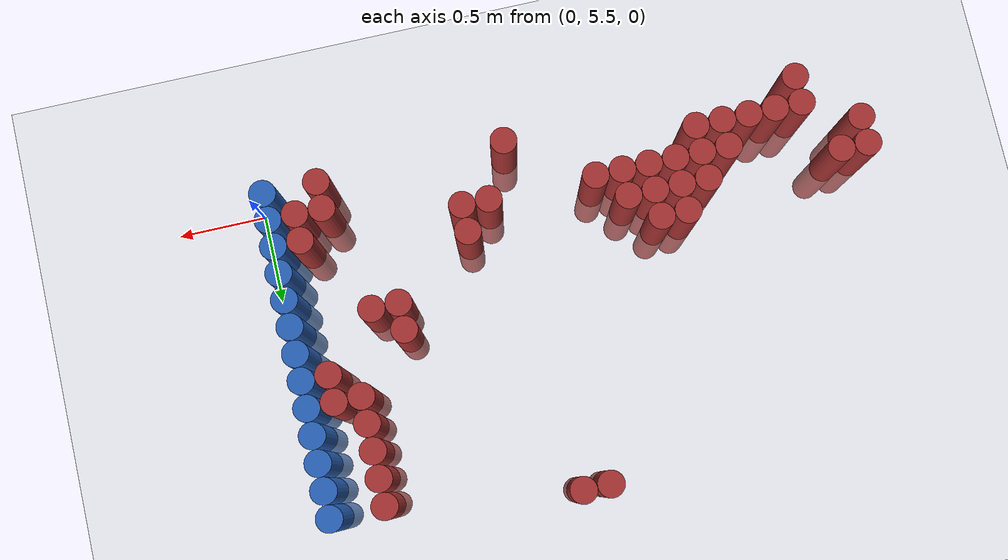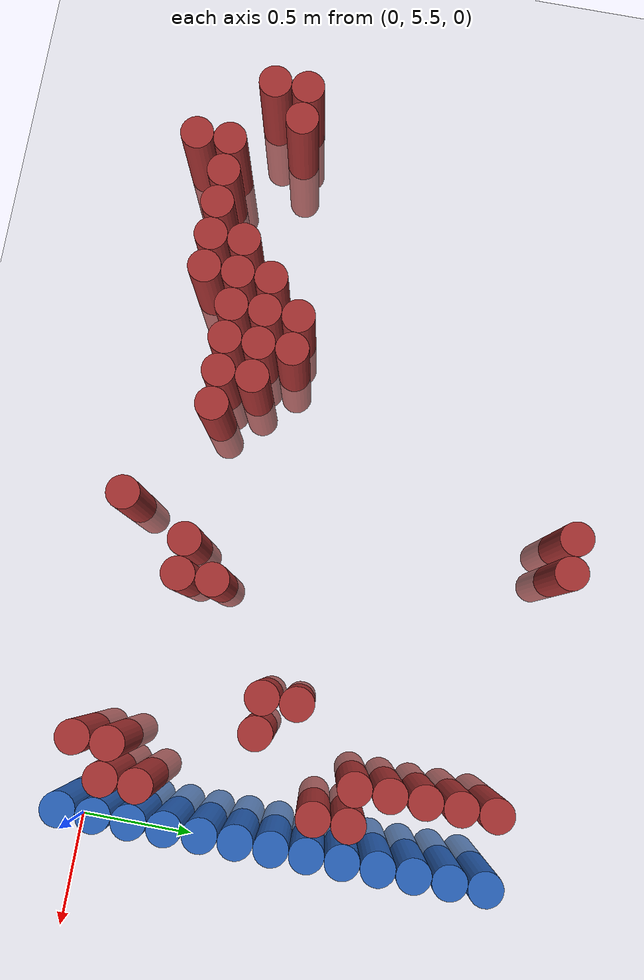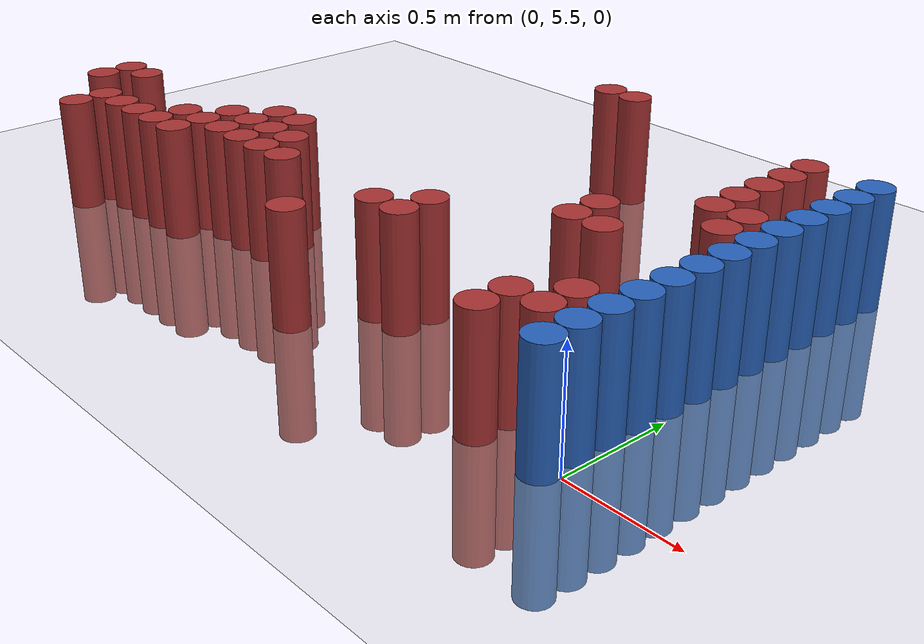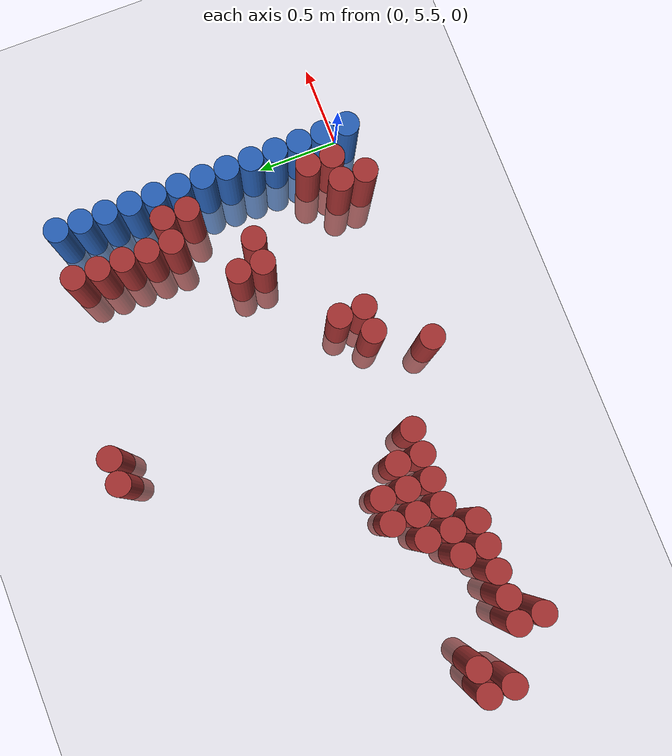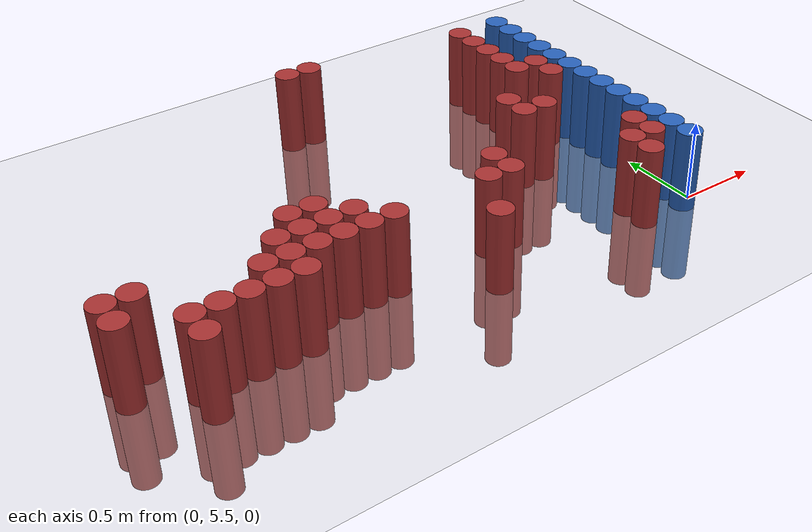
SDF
<sdf version="1.6">
 <world name="world_241">
  <model name="ground_plane">
   <static>1</static>
   <link name="link">
    <collision name="collision">
     <geometry><plane><normal>0 0 1</normal><size>100 100</size></plane></geometry>
     <surface><friction><ode><mu>100</mu><mu2>50</mu2></ode></friction></surface>
    </collision>
    <visual name="visual">
     <cast_shadows>0</cast_shadows>
     <geometry><plane><normal>0 0 1</normal><size>100 100</size></plane></geometry>
     <material>
      <script><uri>file://media/materials/scripts/gazebo.material</uri><name>Gazebo/Grey</name></script>
     </material>
    </visual>
   </link>
  </model>
  <model name="unit_cylinder_158">
   <static>1</static>
   <pose>-3.375000 5.775000 0.000000 0.000000 0.000000 0.000000</pose>
   <link name="link">
    <inertial>
     <mass>1</mass>
     <inertia><ixx>0.145833</ixx><ixy>0</ixy><ixz>0</ixz><iyy>0.145833</iyy><iyz>0</iyz><izz>0.125</izz></inertia>
    </inertial>
    <collision name="collision">
     <geometry><cylinder><radius>0.075000</radius><length>1</length></cylinder></geometry>
    </collision>
    <visual name="visual">
     <geometry><cylinder><radius>0.075000</radius><length>1</length></cylinder></geometry>
     <material>
      <ambient>0.648000 0.192000 0.192000 1</ambient>
      <diffuse>0.648000 0.192000 0.192000 1</diffuse>
     </material>
     <material>
      <script><name>Gazebo/Grey</name><uri>file://media/materials/scripts/gazebo.material</uri></script>
     </material>
    </visual>
   </link>
  </model>
  <model name="unit_cylinder_159">
   <static>1</static>
   <pose>-3.375000 5.925000 0.000000 0.000000 0.000000 0.000000</pose>
   <link name="link">
    <inertial>
     <mass>1</mass>
     <inertia><ixx>0.145833</ixx><ixy>0</ixy><ixz>0</ixz><iyy>0.145833</iyy><iyz>0</iyz><izz>0.125</izz></inertia>
    </inertial>
    <collision name="collision">
     <geometry><cylinder><radius>0.075000</radius><length>1</length></cylinder></geometry>
    </collision>
    <visual name="visual">
     <geometry><cylinder><radius>0.075000</radius><length>1</length></cylinder></geometry>
     <material>
      <ambient>0.648000 0.192000 0.192000 1</ambient>
      <diffuse>0.648000 0.192000 0.192000 1</diffuse>
     </material>
     <material>
      <script><name>Gazebo/Grey</name><uri>file://media/materials/scripts/gazebo.material</uri></script>
     </material>
    </visual>
   </link>
  </model>
  <model name="unit_cylinder_160">
   <static>1</static>
   <pose>-3.225000 5.925000 0.000000 0.000000 0.000000 0.000000</pose>
   <link name="link">
    <inertial>
     <mass>1</mass>
     <inertia><ixx>0.145833</ixx><ixy>0</ixy><ixz>0</ixz><iyy>0.145833</iyy><iyz>0</iyz><izz>0.125</izz></inertia>
    </inertial>
    <collision name="collision">
     <geometry><cylinder><radius>0.075000</radius><length>1</length></cylinder></geometry>
    </collision>
    <visual name="visual">
     <geometry><cylinder><radius>0.075000</radius><length>1</length></cylinder></geometry>
     <material>
      <ambient>0.648000 0.192000 0.192000 1</ambient>
      <diffuse>0.648000 0.192000 0.192000 1</diffuse>
     </material>
     <material>
      <script><name>Gazebo/Grey</name><uri>file://media/materials/scripts/gazebo.material</uri></script>
     </material>
    </visual>
   </link>
  </model>
  <model name="unit_cylinder_161">
   <static>1</static>
   <pose>-3.075000 5.475000 0.000000 0.000000 0.000000 0.000000</pose>
   <link name="link">
    <inertial>
     <mass>1</mass>
     <inertia><ixx>0.145833</ixx><ixy>0</ixy><ixz>0</ixz><iyy>0.145833</iyy><iyz>0</iyz><izz>0.125</izz></inertia>
    </inertial>
    <collision name="collision">
     <geometry><cylinder><radius>0.075000</radius><length>1</length></cylinder></geometry>
    </collision>
    <visual name="visual">
     <geometry><cylinder><radius>0.075000</radius><length>1</length></cylinder></geometry>
     <material>
      <ambient>0.648000 0.192000 0.192000 1</ambient>
      <diffuse>0.648000 0.192000 0.192000 1</diffuse>
     </material>
     <material>
      <script><name>Gazebo/Grey</name><uri>file://media/materials/scripts/gazebo.material</uri></script>
     </material>
    </visual>
   </link>
  </model>
  <model name="unit_cylinder_162">
   <static>1</static>
   <pose>-3.075000 5.625000 0.000000 0.000000 0.000000 0.000000</pose>
   <link name="link">
    <inertial>
     <mass>1</mass>
     <inertia><ixx>0.145833</ixx><ixy>0</ixy><ixz>0</ixz><iyy>0.145833</iyy><iyz>0</iyz><izz>0.125</izz></inertia>
    </inertial>
    <collision name="collision">
     <geometry><cylinder><radius>0.075000</radius><length>1</length></cylinder></geometry>
    </collision>
    <visual name="visual">
     <geometry><cylinder><radius>0.075000</radius><length>1</length></cylinder></geometry>
     <material>
      <ambient>0.648000 0.192000 0.192000 1</ambient>
      <diffuse>0.648000 0.192000 0.192000 1</diffuse>
     </material>
     <material>
      <script><name>Gazebo/Grey</name><uri>file://media/materials/scripts/gazebo.material</uri></script>
     </material>
    </visual>
   </link>
  </model>
  <model name="unit_cylinder_163">
   <static>1</static>
   <pose>-2.925000 5.625000 0.000000 0.000000 0.000000 0.000000</pose>
   <link name="link">
    <inertial>
     <mass>1</mass>
     <inertia><ixx>0.145833</ixx><ixy>0</ixy><ixz>0</ixz><iyy>0.145833</iyy><iyz>0</iyz><izz>0.125</izz></inertia>
    </inertial>
    <collision name="collision">
     <geometry><cylinder><radius>0.075000</radius><length>1</length></cylinder></geometry>
    </collision>
    <visual name="visual">
     <geometry><cylinder><radius>0.075000</radius><length>1</length></cylinder></geometry>
     <material>
      <ambient>0.648000 0.192000 0.192000 1</ambient>
      <diffuse>0.648000 0.192000 0.192000 1</diffuse>
     </material>
     <material>
      <script><name>Gazebo/Grey</name><uri>file://media/materials/scripts/gazebo.material</uri></script>
     </material>
    </visual>
   </link>
  </model>
  <model name="unit_cylinder_164">
   <static>1</static>
   <pose>-2.775000 5.625000 0.000000 0.000000 0.000000 0.000000</pose>
   <link name="link">
    <inertial>
     <mass>1</mass>
     <inertia><ixx>0.145833</ixx><ixy>0</ixy><ixz>0</ixz><iyy>0.145833</iyy><iyz>0</iyz><izz>0.125</izz></inertia>
    </inertial>
    <collision name="collision">
     <geometry><cylinder><radius>0.075000</radius><length>1</length></cylinder></geometry>
    </collision>
    <visual name="visual">
     <geometry><cylinder><radius>0.075000</radius><length>1</length></cylinder></geometry>
     <material>
      <ambient>0.648000 0.192000 0.192000 1</ambient>
      <diffuse>0.648000 0.192000 0.192000 1</diffuse>
     </material>
     <material>
      <script><name>Gazebo/Grey</name><uri>file://media/materials/scripts/gazebo.material</uri></script>
     </material>
    </visual>
   </link>
  </model>
  <model name="unit_cylinder_165">
   <static>1</static>
   <pose>-2.625000 5.625000 0.000000 0.000000 0.000000 0.000000</pose>
   <link name="link">
    <inertial>
     <mass>1</mass>
     <inertia><ixx>0.145833</ixx><ixy>0</ixy><ixz>0</ixz><iyy>0.145833</iyy><iyz>0</iyz><izz>0.125</izz></inertia>
    </inertial>
    <collision name="collision">
     <geometry><cylinder><radius>0.075000</radius><length>1</length></cylinder></geometry>
    </collision>
    <visual name="visual">
     <geometry><cylinder><radius>0.075000</radius><length>1</length></cylinder></geometry>
     <material>
      <ambient>0.648000 0.192000 0.192000 1</ambient>
      <diffuse>0.648000 0.192000 0.192000 1</diffuse>
     </material>
     <material>
      <script><name>Gazebo/Grey</name><uri>file://media/materials/scripts/gazebo.material</uri></script>
     </material>
    </visual>
   </link>
  </model>
  <model name="unit_cylinder_166">
   <static>1</static>
   <pose>-2.625000 5.775000 0.000000 0.000000 0.000000 0.000000</pose>
   <link name="link">
    <inertial>
     <mass>1</mass>
     <inertia><ixx>0.145833</ixx><ixy>0</ixy><ixz>0</ixz><iyy>0.145833</iyy><iyz>0</iyz><izz>0.125</izz></inertia>
    </inertial>
    <collision name="collision">
     <geometry><cylinder><radius>0.075000</radius><length>1</length></cylinder></geometry>
    </collision>
    <visual name="visual">
     <geometry><cylinder><radius>0.075000</radius><length>1</length></cylinder></geometry>
     <material>
      <ambient>0.648000 0.192000 0.192000 1</ambient>
      <diffuse>0.648000 0.192000 0.192000 1</diffuse>
     </material>
     <material>
      <script><name>Gazebo/Grey</name><uri>file://media/materials/scripts/gazebo.material</uri></script>
     </material>
    </visual>
   </link>
  </model>
  <model name="unit_cylinder_167">
   <static>1</static>
   <pose>-2.475000 5.625000 0.000000 0.000000 0.000000 0.000000</pose>
   <link name="link">
    <inertial>
     <mass>1</mass>
     <inertia><ixx>0.145833</ixx><ixy>0</ixy><ixz>0</ixz><iyy>0.145833</iyy><iyz>0</iyz><izz>0.125</izz></inertia>
    </inertial>
    <collision name="collision">
     <geometry><cylinder><radius>0.075000</radius><length>1</length></cylinder></geometry>
    </collision>
    <visual name="visual">
     <geometry><cylinder><radius>0.075000</radius><length>1</length></cylinder></geometry>
     <material>
      <ambient>0.648000 0.192000 0.192000 1</ambient>
      <diffuse>0.648000 0.192000 0.192000 1</diffuse>
     </material>
     <material>
      <script><name>Gazebo/Grey</name><uri>file://media/materials/scripts/gazebo.material</uri></script>
     </material>
    </visual>
   </link>
  </model>
  <model name="unit_cylinder_168">
   <static>1</static>
   <pose>-2.475000 5.775000 0.000000 0.000000 0.000000 0.000000</pose>
   <link name="link">
    <inertial>
     <mass>1</mass>
     <inertia><ixx>0.145833</ixx><ixy>0</ixy><ixz>0</ixz><iyy>0.145833</iyy><iyz>0</iyz><izz>0.125</izz></inertia>
    </inertial>
    <collision name="collision">
     <geometry><cylinder><radius>0.075000</radius><length>1</length></cylinder></geometry>
    </collision>
    <visual name="visual">
     <geometry><cylinder><radius>0.075000</radius><length>1</length></cylinder></geometry>
     <material>
      <ambient>0.648000 0.192000 0.192000 1</ambient>
      <diffuse>0.648000 0.192000 0.192000 1</diffuse>
     </material>
     <material>
      <script><name>Gazebo/Grey</name><uri>file://media/materials/scripts/gazebo.material</uri></script>
     </material>
    </visual>
   </link>
  </model>
  <model name="unit_cylinder_169">
   <static>1</static>
   <pose>-2.475000 5.925000 0.000000 0.000000 0.000000 0.000000</pose>
   <link name="link">
    <inertial>
     <mass>1</mass>
     <inertia><ixx>0.145833</ixx><ixy>0</ixy><ixz>0</ixz><iyy>0.145833</iyy><iyz>0</iyz><izz>0.125</izz></inertia>
    </inertial>
    <collision name="collision">
     <geometry><cylinder><radius>0.075000</radius><length>1</length></cylinder></geometry>
    </collision>
    <visual name="visual">
     <geometry><cylinder><radius>0.075000</radius><length>1</length></cylinder></geometry>
     <material>
      <ambient>0.648000 0.192000 0.192000 1</ambient>
      <diffuse>0.648000 0.192000 0.192000 1</diffuse>
     </material>
     <material>
      <script><name>Gazebo/Grey</name><uri>file://media/materials/scripts/gazebo.material</uri></script>
     </material>
    </visual>
   </link>
  </model>
  <model name="unit_cylinder_172">
   <static>1</static>
   <pose>-2.325000 5.775000 0.000000 0.000000 0.000000 0.000000</pose>
   <link name="link">
    <inertial>
     <mass>1</mass>
     <inertia><ixx>0.145833</ixx><ixy>0</ixy><ixz>0</ixz><iyy>0.145833</iyy><iyz>0</iyz><izz>0.125</izz></inertia>
    </inertial>
    <collision name="collision">
     <geometry><cylinder><radius>0.075000</radius><length>1</length></cylinder></geometry>
    </collision>
    <visual name="visual">
     <geometry><cylinder><radius>0.075000</radius><length>1</length></cylinder></geometry>
     <material>
      <ambient>0.648000 0.192000 0.192000 1</ambient>
      <diffuse>0.648000 0.192000 0.192000 1</diffuse>
     </material>
     <material>
      <script><name>Gazebo/Grey</name><uri>file://media/materials/scripts/gazebo.material</uri></script>
     </material>
    </visual>
   </link>
  </model>
  <model name="unit_cylinder_173">
   <static>1</static>
   <pose>-2.325000 5.925000 0.000000 0.000000 0.000000 0.000000</pose>
   <link name="link">
    <inertial>
     <mass>1</mass>
     <inertia><ixx>0.145833</ixx><ixy>0</ixy><ixz>0</ixz><iyy>0.145833</iyy><iyz>0</iyz><izz>0.125</izz></inertia>
    </inertial>
    <collision name="collision">
     <geometry><cylinder><radius>0.075000</radius><length>1</length></cylinder></geometry>
    </collision>
    <visual name="visual">
     <geometry><cylinder><radius>0.075000</radius><length>1</length></cylinder></geometry>
     <material>
      <ambient>0.648000 0.192000 0.192000 1</ambient>
      <diffuse>0.648000 0.192000 0.192000 1</diffuse>
     </material>
     <material>
      <script><name>Gazebo/Grey</name><uri>file://media/materials/scripts/gazebo.material</uri></script>
     </material>
    </visual>
   </link>
  </model>
  <model name="unit_cylinder_174">
   <static>1</static>
   <pose>-2.325000 6.075000 0.000000 0.000000 0.000000 0.000000</pose>
   <link name="link">
    <inertial>
     <mass>1</mass>
     <inertia><ixx>0.145833</ixx><ixy>0</ixy><ixz>0</ixz><iyy>0.145833</iyy><iyz>0</iyz><izz>0.125</izz></inertia>
    </inertial>
    <collision name="collision">
     <geometry><cylinder><radius>0.075000</radius><length>1</length></cylinder></geometry>
    </collision>
    <visual name="visual">
     <geometry><cylinder><radius>0.075000</radius><length>1</length></cylinder></geometry>
     <material>
      <ambient>0.648000 0.192000 0.192000 1</ambient>
      <diffuse>0.648000 0.192000 0.192000 1</diffuse>
     </material>
     <material>
      <script><name>Gazebo/Grey</name><uri>file://media/materials/scripts/gazebo.material</uri></script>
     </material>
    </visual>
   </link>
  </model>
  <model name="unit_cylinder_176">
   <static>1</static>
   <pose>-2.175000 5.775000 0.000000 0.000000 0.000000 0.000000</pose>
   <link name="link">
    <inertial>
     <mass>1</mass>
     <inertia><ixx>0.145833</ixx><ixy>0</ixy><ixz>0</ixz><iyy>0.145833</iyy><iyz>0</iyz><izz>0.125</izz></inertia>
    </inertial>
    <collision name="collision">
     <geometry><cylinder><radius>0.075000</radius><length>1</length></cylinder></geometry>
    </collision>
    <visual name="visual">
     <geometry><cylinder><radius>0.075000</radius><length>1</length></cylinder></geometry>
     <material>
      <ambient>0.648000 0.192000 0.192000 1</ambient>
      <diffuse>0.648000 0.192000 0.192000 1</diffuse>
     </material>
     <material>
      <script><name>Gazebo/Grey</name><uri>file://media/materials/scripts/gazebo.material</uri></script>
     </material>
    </visual>
   </link>
  </model>
  <model name="unit_cylinder_177">
   <static>1</static>
   <pose>-2.175000 5.925000 0.000000 0.000000 0.000000 0.000000</pose>
   <link name="link">
    <inertial>
     <mass>1</mass>
     <inertia><ixx>0.145833</ixx><ixy>0</ixy><ixz>0</ixz><iyy>0.145833</iyy><iyz>0</iyz><izz>0.125</izz></inertia>
    </inertial>
    <collision name="collision">
     <geometry><cylinder><radius>0.075000</radius><length>1</length></cylinder></geometry>
    </collision>
    <visual name="visual">
     <geometry><cylinder><radius>0.075000</radius><length>1</length></cylinder></geometry>
     <material>
      <ambient>0.648000 0.192000 0.192000 1</ambient>
      <diffuse>0.648000 0.192000 0.192000 1</diffuse>
     </material>
     <material>
      <script><name>Gazebo/Grey</name><uri>file://media/materials/scripts/gazebo.material</uri></script>
     </material>
    </visual>
   </link>
  </model>
  <model name="unit_cylinder_178">
   <static>1</static>
   <pose>-2.175000 6.075000 0.000000 0.000000 0.000000 0.000000</pose>
   <link name="link">
    <inertial>
     <mass>1</mass>
     <inertia><ixx>0.145833</ixx><ixy>0</ixy><ixz>0</ixz><iyy>0.145833</iyy><iyz>0</iyz><izz>0.125</izz></inertia>
    </inertial>
    <collision name="collision">
     <geometry><cylinder><radius>0.075000</radius><length>1</length></cylinder></geometry>
    </collision>
    <visual name="visual">
     <geometry><cylinder><radius>0.075000</radius><length>1</length></cylinder></geometry>
     <material>
      <ambient>0.648000 0.192000 0.192000 1</ambient>
      <diffuse>0.648000 0.192000 0.192000 1</diffuse>
     </material>
     <material>
      <script><name>Gazebo/Grey</name><uri>file://media/materials/scripts/gazebo.material</uri></script>
     </material>
    </visual>
   </link>
  </model>
  <model name="unit_cylinder_179">
   <static>1</static>
   <pose>-2.025000 5.775000 0.000000 0.000000 0.000000 0.000000</pose>
   <link name="link">
    <inertial>
     <mass>1</mass>
     <inertia><ixx>0.145833</ixx><ixy>0</ixy><ixz>0</ixz><iyy>0.145833</iyy><iyz>0</iyz><izz>0.125</izz></inertia>
    </inertial>
    <collision name="collision">
     <geometry><cylinder><radius>0.075000</radius><length>1</length></cylinder></geometry>
    </collision>
    <visual name="visual">
     <geometry><cylinder><radius>0.075000</radius><length>1</length></cylinder></geometry>
     <material>
      <ambient>0.648000 0.192000 0.192000 1</ambient>
      <diffuse>0.648000 0.192000 0.192000 1</diffuse>
     </material>
     <material>
      <script><name>Gazebo/Grey</name><uri>file://media/materials/scripts/gazebo.material</uri></script>
     </material>
    </visual>
   </link>
  </model>
  <model name="unit_cylinder_180">
   <static>1</static>
   <pose>-2.025000 5.925000 0.000000 0.000000 0.000000 0.000000</pose>
   <link name="link">
    <inertial>
     <mass>1</mass>
     <inertia><ixx>0.145833</ixx><ixy>0</ixy><ixz>0</ixz><iyy>0.145833</iyy><iyz>0</iyz><izz>0.125</izz></inertia>
    </inertial>
    <collision name="collision">
     <geometry><cylinder><radius>0.075000</radius><length>1</length></cylinder></geometry>
    </collision>
    <visual name="visual">
     <geometry><cylinder><radius>0.075000</radius><length>1</length></cylinder></geometry>
     <material>
      <ambient>0.648000 0.192000 0.192000 1</ambient>
      <diffuse>0.648000 0.192000 0.192000 1</diffuse>
     </material>
     <material>
      <script><name>Gazebo/Grey</name><uri>file://media/materials/scripts/gazebo.material</uri></script>
     </material>
    </visual>
   </link>
  </model>
  <model name="unit_cylinder_181">
   <static>1</static>
   <pose>-1.875000 5.775000 0.000000 0.000000 0.000000 0.000000</pose>
   <link name="link">
    <inertial>
     <mass>1</mass>
     <inertia><ixx>0.145833</ixx><ixy>0</ixy><ixz>0</ixz><iyy>0.145833</iyy><iyz>0</iyz><izz>0.125</izz></inertia>
    </inertial>
    <collision name="collision">
     <geometry><cylinder><radius>0.075000</radius><length>1</length></cylinder></geometry>
    </collision>
    <visual name="visual">
     <geometry><cylinder><radius>0.075000</radius><length>1</length></cylinder></geometry>
     <material>
      <ambient>0.648000 0.192000 0.192000 1</ambient>
      <diffuse>0.648000 0.192000 0.192000 1</diffuse>
     </material>
     <material>
      <script><name>Gazebo/Grey</name><uri>file://media/materials/scripts/gazebo.material</uri></script>
     </material>
    </visual>
   </link>
  </model>
  <model name="unit_cylinder_188">
   <static>1</static>
   <pose>-1.575000 7.425000 0.000000 0.000000 0.000000 0.000000</pose>
   <link name="link">
    <inertial>
     <mass>1</mass>
     <inertia><ixx>0.145833</ixx><ixy>0</ixy><ixz>0</ixz><iyy>0.145833</iyy><iyz>0</iyz><izz>0.125</izz></inertia>
    </inertial>
    <collision name="collision">
     <geometry><cylinder><radius>0.075000</radius><length>1</length></cylinder></geometry>
    </collision>
    <visual name="visual">
     <geometry><cylinder><radius>0.075000</radius><length>1</length></cylinder></geometry>
     <material>
      <ambient>0.648000 0.192000 0.192000 1</ambient>
      <diffuse>0.648000 0.192000 0.192000 1</diffuse>
     </material>
     <material>
      <script><name>Gazebo/Grey</name><uri>file://media/materials/scripts/gazebo.material</uri></script>
     </material>
    </visual>
   </link>
  </model>
  <model name="unit_cylinder_191">
   <static>1</static>
   <pose>-1.425000 5.475000 0.000000 0.000000 0.000000 0.000000</pose>
   <link name="link">
    <inertial>
     <mass>1</mass>
     <inertia><ixx>0.145833</ixx><ixy>0</ixy><ixz>0</ixz><iyy>0.145833</iyy><iyz>0</iyz><izz>0.125</izz></inertia>
    </inertial>
    <collision name="collision">
     <geometry><cylinder><radius>0.075000</radius><length>1</length></cylinder></geometry>
    </collision>
    <visual name="visual">
     <geometry><cylinder><radius>0.075000</radius><length>1</length></cylinder></geometry>
     <material>
      <ambient>0.648000 0.192000 0.192000 1</ambient>
      <diffuse>0.648000 0.192000 0.192000 1</diffuse>
     </material>
     <material>
      <script><name>Gazebo/Grey</name><uri>file://media/materials/scripts/gazebo.material</uri></script>
     </material>
    </visual>
   </link>
  </model>
  <model name="unit_cylinder_192">
   <static>1</static>
   <pose>-1.425000 7.425000 0.000000 0.000000 0.000000 0.000000</pose>
   <link name="link">
    <inertial>
     <mass>1</mass>
     <inertia><ixx>0.145833</ixx><ixy>0</ixy><ixz>0</ixz><iyy>0.145833</iyy><iyz>0</iyz><izz>0.125</izz></inertia>
    </inertial>
    <collision name="collision">
     <geometry><cylinder><radius>0.075000</radius><length>1</length></cylinder></geometry>
    </collision>
    <visual name="visual">
     <geometry><cylinder><radius>0.075000</radius><length>1</length></cylinder></geometry>
     <material>
      <ambient>0.648000 0.192000 0.192000 1</ambient>
      <diffuse>0.648000 0.192000 0.192000 1</diffuse>
     </material>
     <material>
      <script><name>Gazebo/Grey</name><uri>file://media/materials/scripts/gazebo.material</uri></script>
     </material>
    </visual>
   </link>
  </model>
  <model name="unit_cylinder_195">
   <static>1</static>
   <pose>-1.275000 5.775000 0.000000 0.000000 0.000000 0.000000</pose>
   <link name="link">
    <inertial>
     <mass>1</mass>
     <inertia><ixx>0.145833</ixx><ixy>0</ixy><ixz>0</ixz><iyy>0.145833</iyy><iyz>0</iyz><izz>0.125</izz></inertia>
    </inertial>
    <collision name="collision">
     <geometry><cylinder><radius>0.075000</radius><length>1</length></cylinder></geometry>
    </collision>
    <visual name="visual">
     <geometry><cylinder><radius>0.075000</radius><length>1</length></cylinder></geometry>
     <material>
      <ambient>0.648000 0.192000 0.192000 1</ambient>
      <diffuse>0.648000 0.192000 0.192000 1</diffuse>
     </material>
     <material>
      <script><name>Gazebo/Grey</name><uri>file://media/materials/scripts/gazebo.material</uri></script>
     </material>
    </visual>
   </link>
  </model>
  <model name="unit_cylinder_196">
   <static>1</static>
   <pose>-1.125000 5.775000 0.000000 0.000000 0.000000 0.000000</pose>
   <link name="link">
    <inertial>
     <mass>1</mass>
     <inertia><ixx>0.145833</ixx><ixy>0</ixy><ixz>0</ixz><iyy>0.145833</iyy><iyz>0</iyz><izz>0.125</izz></inertia>
    </inertial>
    <collision name="collision">
     <geometry><cylinder><radius>0.075000</radius><length>1</length></cylinder></geometry>
    </collision>
    <visual name="visual">
     <geometry><cylinder><radius>0.075000</radius><length>1</length></cylinder></geometry>
     <material>
      <ambient>0.648000 0.192000 0.192000 1</ambient>
      <diffuse>0.648000 0.192000 0.192000 1</diffuse>
     </material>
     <material>
      <script><name>Gazebo/Grey</name><uri>file://media/materials/scripts/gazebo.material</uri></script>
     </material>
    </visual>
   </link>
  </model>
  <model name="unit_cylinder_197">
   <static>1</static>
   <pose>-1.125000 5.925000 0.000000 0.000000 0.000000 0.000000</pose>
   <link name="link">
    <inertial>
     <mass>1</mass>
     <inertia><ixx>0.145833</ixx><ixy>0</ixy><ixz>0</ixz><iyy>0.145833</iyy><iyz>0</iyz><izz>0.125</izz></inertia>
    </inertial>
    <collision name="collision">
     <geometry><cylinder><radius>0.075000</radius><length>1</length></cylinder></geometry>
    </collision>
    <visual name="visual">
     <geometry><cylinder><radius>0.075000</radius><length>1</length></cylinder></geometry>
     <material>
      <ambient>0.648000 0.192000 0.192000 1</ambient>
      <diffuse>0.648000 0.192000 0.192000 1</diffuse>
     </material>
     <material>
      <script><name>Gazebo/Grey</name><uri>file://media/materials/scripts/gazebo.material</uri></script>
     </material>
    </visual>
   </link>
  </model>
  <model name="unit_cylinder_202">
   <static>1</static>
   <pose>-0.675000 6.225000 0.000000 0.000000 0.000000 0.000000</pose>
   <link name="link">
    <inertial>
     <mass>1</mass>
     <inertia><ixx>0.145833</ixx><ixy>0</ixy><ixz>0</ixz><iyy>0.145833</iyy><iyz>0</iyz><izz>0.125</izz></inertia>
    </inertial>
    <collision name="collision">
     <geometry><cylinder><radius>0.075000</radius><length>1</length></cylinder></geometry>
    </collision>
    <visual name="visual">
     <geometry><cylinder><radius>0.075000</radius><length>1</length></cylinder></geometry>
     <material>
      <ambient>0.648000 0.192000 0.192000 1</ambient>
      <diffuse>0.648000 0.192000 0.192000 1</diffuse>
     </material>
     <material>
      <script><name>Gazebo/Grey</name><uri>file://media/materials/scripts/gazebo.material</uri></script>
     </material>
    </visual>
   </link>
  </model>
  <model name="unit_cylinder_203">
   <static>1</static>
   <pose>-0.675000 6.375000 0.000000 0.000000 0.000000 0.000000</pose>
   <link name="link">
    <inertial>
     <mass>1</mass>
     <inertia><ixx>0.145833</ixx><ixy>0</ixy><ixz>0</ixz><iyy>0.145833</iyy><iyz>0</iyz><izz>0.125</izz></inertia>
    </inertial>
    <collision name="collision">
     <geometry><cylinder><radius>0.075000</radius><length>1</length></cylinder></geometry>
    </collision>
    <visual name="visual">
     <geometry><cylinder><radius>0.075000</radius><length>1</length></cylinder></geometry>
     <material>
      <ambient>0.648000 0.192000 0.192000 1</ambient>
      <diffuse>0.648000 0.192000 0.192000 1</diffuse>
     </material>
     <material>
      <script><name>Gazebo/Grey</name><uri>file://media/materials/scripts/gazebo.material</uri></script>
     </material>
    </visual>
   </link>
  </model>
  <model name="unit_cylinder_208">
   <static>1</static>
   <pose>-0.525000 6.225000 0.000000 0.000000 0.000000 0.000000</pose>
   <link name="link">
    <inertial>
     <mass>1</mass>
     <inertia><ixx>0.145833</ixx><ixy>0</ixy><ixz>0</ixz><iyy>0.145833</iyy><iyz>0</iyz><izz>0.125</izz></inertia>
    </inertial>
    <collision name="collision">
     <geometry><cylinder><radius>0.075000</radius><length>1</length></cylinder></geometry>
    </collision>
    <visual name="visual">
     <geometry><cylinder><radius>0.075000</radius><length>1</length></cylinder></geometry>
     <material>
      <ambient>0.648000 0.192000 0.192000 1</ambient>
      <diffuse>0.648000 0.192000 0.192000 1</diffuse>
     </material>
     <material>
      <script><name>Gazebo/Grey</name><uri>file://media/materials/scripts/gazebo.material</uri></script>
     </material>
    </visual>
   </link>
  </model>
  <model name="unit_cylinder_213">
   <static>1</static>
   <pose>-0.375000 5.475000 0.000000 0.000000 0.000000 0.000000</pose>
   <link name="link">
    <inertial>
     <mass>1</mass>
     <inertia><ixx>0.145833</ixx><ixy>0</ixy><ixz>0</ixz><iyy>0.145833</iyy><iyz>0</iyz><izz>0.125</izz></inertia>
    </inertial>
    <collision name="collision">
     <geometry><cylinder><radius>0.075000</radius><length>1</length></cylinder></geometry>
    </collision>
    <visual name="visual">
     <geometry><cylinder><radius>0.075000</radius><length>1</length></cylinder></geometry>
     <material>
      <ambient>0.648000 0.192000 0.192000 1</ambient>
      <diffuse>0.648000 0.192000 0.192000 1</diffuse>
     </material>
     <material>
      <script><name>Gazebo/Grey</name><uri>file://media/materials/scripts/gazebo.material</uri></script>
     </material>
    </visual>
   </link>
  </model>
  <model name="unit_cylinder_214">
   <static>1</static>
   <pose>-0.375000 5.625000 0.000000 0.000000 0.000000 0.000000</pose>
   <link name="link">
    <inertial>
     <mass>1</mass>
     <inertia><ixx>0.145833</ixx><ixy>0</ixy><ixz>0</ixz><iyy>0.145833</iyy><iyz>0</iyz><izz>0.125</izz></inertia>
    </inertial>
    <collision name="collision">
     <geometry><cylinder><radius>0.075000</radius><length>1</length></cylinder></geometry>
    </collision>
    <visual name="visual">
     <geometry><cylinder><radius>0.075000</radius><length>1</length></cylinder></geometry>
     <material>
      <ambient>0.648000 0.192000 0.192000 1</ambient>
      <diffuse>0.648000 0.192000 0.192000 1</diffuse>
     </material>
     <material>
      <script><name>Gazebo/Grey</name><uri>file://media/materials/scripts/gazebo.material</uri></script>
     </material>
    </visual>
   </link>
  </model>
  <model name="unit_cylinder_215">
   <static>1</static>
   <pose>-0.375000 6.675000 0.000000 0.000000 0.000000 0.000000</pose>
   <link name="link">
    <inertial>
     <mass>1</mass>
     <inertia><ixx>0.145833</ixx><ixy>0</ixy><ixz>0</ixz><iyy>0.145833</iyy><iyz>0</iyz><izz>0.125</izz></inertia>
    </inertial>
    <collision name="collision">
     <geometry><cylinder><radius>0.075000</radius><length>1</length></cylinder></geometry>
    </collision>
    <visual name="visual">
     <geometry><cylinder><radius>0.075000</radius><length>1</length></cylinder></geometry>
     <material>
      <ambient>0.648000 0.192000 0.192000 1</ambient>
      <diffuse>0.648000 0.192000 0.192000 1</diffuse>
     </material>
     <material>
      <script><name>Gazebo/Grey</name><uri>file://media/materials/scripts/gazebo.material</uri></script>
     </material>
    </visual>
   </link>
  </model>
  <model name="unit_cylinder_216">
   <static>1</static>
   <pose>-0.375000 6.825000 0.000000 0.000000 0.000000 0.000000</pose>
   <link name="link">
    <inertial>
     <mass>1</mass>
     <inertia><ixx>0.145833</ixx><ixy>0</ixy><ixz>0</ixz><iyy>0.145833</iyy><iyz>0</iyz><izz>0.125</izz></inertia>
    </inertial>
    <collision name="collision">
     <geometry><cylinder><radius>0.075000</radius><length>1</length></cylinder></geometry>
    </collision>
    <visual name="visual">
     <geometry><cylinder><radius>0.075000</radius><length>1</length></cylinder></geometry>
     <material>
      <ambient>0.648000 0.192000 0.192000 1</ambient>
      <diffuse>0.648000 0.192000 0.192000 1</diffuse>
     </material>
     <material>
      <script><name>Gazebo/Grey</name><uri>file://media/materials/scripts/gazebo.material</uri></script>
     </material>
    </visual>
   </link>
  </model>
  <model name="unit_cylinder_217">
   <static>1</static>
   <pose>-0.375000 6.975000 0.000000 0.000000 0.000000 0.000000</pose>
   <link name="link">
    <inertial>
     <mass>1</mass>
     <inertia><ixx>0.145833</ixx><ixy>0</ixy><ixz>0</ixz><iyy>0.145833</iyy><iyz>0</iyz><izz>0.125</izz></inertia>
    </inertial>
    <collision name="collision">
     <geometry><cylinder><radius>0.075000</radius><length>1</length></cylinder></geometry>
    </collision>
    <visual name="visual">
     <geometry><cylinder><radius>0.075000</radius><length>1</length></cylinder></geometry>
     <material>
      <ambient>0.648000 0.192000 0.192000 1</ambient>
      <diffuse>0.648000 0.192000 0.192000 1</diffuse>
     </material>
     <material>
      <script><name>Gazebo/Grey</name><uri>file://media/materials/scripts/gazebo.material</uri></script>
     </material>
    </visual>
   </link>
  </model>
  <model name="unit_cylinder_218">
   <static>1</static>
   <pose>-0.375000 7.125000 0.000000 0.000000 0.000000 0.000000</pose>
   <link name="link">
    <inertial>
     <mass>1</mass>
     <inertia><ixx>0.145833</ixx><ixy>0</ixy><ixz>0</ixz><iyy>0.145833</iyy><iyz>0</iyz><izz>0.125</izz></inertia>
    </inertial>
    <collision name="collision">
     <geometry><cylinder><radius>0.075000</radius><length>1</length></cylinder></geometry>
    </collision>
    <visual name="visual">
     <geometry><cylinder><radius>0.075000</radius><length>1</length></cylinder></geometry>
     <material>
      <ambient>0.648000 0.192000 0.192000 1</ambient>
      <diffuse>0.648000 0.192000 0.192000 1</diffuse>
     </material>
     <material>
      <script><name>Gazebo/Grey</name><uri>file://media/materials/scripts/gazebo.material</uri></script>
     </material>
    </visual>
   </link>
  </model>
  <model name="unit_cylinder_219">
   <static>1</static>
   <pose>-0.375000 7.275000 0.000000 0.000000 0.000000 0.000000</pose>
   <link name="link">
    <inertial>
     <mass>1</mass>
     <inertia><ixx>0.145833</ixx><ixy>0</ixy><ixz>0</ixz><iyy>0.145833</iyy><iyz>0</iyz><izz>0.125</izz></inertia>
    </inertial>
    <collision name="collision">
     <geometry><cylinder><radius>0.075000</radius><length>1</length></cylinder></geometry>
    </collision>
    <visual name="visual">
     <geometry><cylinder><radius>0.075000</radius><length>1</length></cylinder></geometry>
     <material>
      <ambient>0.648000 0.192000 0.192000 1</ambient>
      <diffuse>0.648000 0.192000 0.192000 1</diffuse>
     </material>
     <material>
      <script><name>Gazebo/Grey</name><uri>file://media/materials/scripts/gazebo.material</uri></script>
     </material>
    </visual>
   </link>
  </model>
  <model name="unit_cylinder_225">
   <static>1</static>
   <pose>-0.225000 5.625000 0.000000 0.000000 0.000000 0.000000</pose>
   <link name="link">
    <inertial>
     <mass>1</mass>
     <inertia><ixx>0.145833</ixx><ixy>0</ixy><ixz>0</ixz><iyy>0.145833</iyy><iyz>0</iyz><izz>0.125</izz></inertia>
    </inertial>
    <collision name="collision">
     <geometry><cylinder><radius>0.075000</radius><length>1</length></cylinder></geometry>
    </collision>
    <visual name="visual">
     <geometry><cylinder><radius>0.075000</radius><length>1</length></cylinder></geometry>
     <material>
      <ambient>0.648000 0.192000 0.192000 1</ambient>
      <diffuse>0.648000 0.192000 0.192000 1</diffuse>
     </material>
     <material>
      <script><name>Gazebo/Grey</name><uri>file://media/materials/scripts/gazebo.material</uri></script>
     </material>
    </visual>
   </link>
  </model>
  <model name="unit_cylinder_226">
   <static>1</static>
   <pose>-0.225000 5.775000 0.000000 0.000000 0.000000 0.000000</pose>
   <link name="link">
    <inertial>
     <mass>1</mass>
     <inertia><ixx>0.145833</ixx><ixy>0</ixy><ixz>0</ixz><iyy>0.145833</iyy><iyz>0</iyz><izz>0.125</izz></inertia>
    </inertial>
    <collision name="collision">
     <geometry><cylinder><radius>0.075000</radius><length>1</length></cylinder></geometry>
    </collision>
    <visual name="visual">
     <geometry><cylinder><radius>0.075000</radius><length>1</length></cylinder></geometry>
     <material>
      <ambient>0.648000 0.192000 0.192000 1</ambient>
      <diffuse>0.648000 0.192000 0.192000 1</diffuse>
     </material>
     <material>
      <script><name>Gazebo/Grey</name><uri>file://media/materials/scripts/gazebo.material</uri></script>
     </material>
    </visual>
   </link>
  </model>
  <model name="unit_cylinder_227">
   <static>1</static>
   <pose>-0.225000 6.525000 0.000000 0.000000 0.000000 0.000000</pose>
   <link name="link">
    <inertial>
     <mass>1</mass>
     <inertia><ixx>0.145833</ixx><ixy>0</ixy><ixz>0</ixz><iyy>0.145833</iyy><iyz>0</iyz><izz>0.125</izz></inertia>
    </inertial>
    <collision name="collision">
     <geometry><cylinder><radius>0.075000</radius><length>1</length></cylinder></geometry>
    </collision>
    <visual name="visual">
     <geometry><cylinder><radius>0.075000</radius><length>1</length></cylinder></geometry>
     <material>
      <ambient>0.648000 0.192000 0.192000 1</ambient>
      <diffuse>0.648000 0.192000 0.192000 1</diffuse>
     </material>
     <material>
      <script><name>Gazebo/Grey</name><uri>file://media/materials/scripts/gazebo.material</uri></script>
     </material>
    </visual>
   </link>
  </model>
  <model name="unit_cylinder_228">
   <static>1</static>
   <pose>-0.225000 6.675000 0.000000 0.000000 0.000000 0.000000</pose>
   <link name="link">
    <inertial>
     <mass>1</mass>
     <inertia><ixx>0.145833</ixx><ixy>0</ixy><ixz>0</ixz><iyy>0.145833</iyy><iyz>0</iyz><izz>0.125</izz></inertia>
    </inertial>
    <collision name="collision">
     <geometry><cylinder><radius>0.075000</radius><length>1</length></cylinder></geometry>
    </collision>
    <visual name="visual">
     <geometry><cylinder><radius>0.075000</radius><length>1</length></cylinder></geometry>
     <material>
      <ambient>0.648000 0.192000 0.192000 1</ambient>
      <diffuse>0.648000 0.192000 0.192000 1</diffuse>
     </material>
     <material>
      <script><name>Gazebo/Grey</name><uri>file://media/materials/scripts/gazebo.material</uri></script>
     </material>
    </visual>
   </link>
  </model>
  <model name="unit_cylinder_242">
   <static>1</static>
   <pose>-0.075000 5.475000 0.000000 0.000000 0.000000 0.000000</pose>
   <link name="link">
    <inertial>
     <mass>1</mass>
     <inertia><ixx>0.145833</ixx><ixy>0</ixy><ixz>0</ixz><iyy>0.145833</iyy><iyz>0</iyz><izz>0.125</izz></inertia>
    </inertial>
    <collision name="collision">
     <geometry><cylinder><radius>0.075000</radius><length>1</length></cylinder></geometry>
    </collision>
    <visual name="visual">
     <geometry><cylinder><radius>0.075000</radius><length>1</length></cylinder></geometry>
     <material>
      <ambient>0.152000 0.379000 0.720000 1</ambient>
      <diffuse>0.152000 0.379000 0.720000 1</diffuse>
     </material>
     <material>
      <script><name>Gazebo/Grey</name><uri>file://media/materials/scripts/gazebo.material</uri></script>
     </material>
    </visual>
   </link>
  </model>
  <model name="unit_cylinder_243">
   <static>1</static>
   <pose>-0.075000 5.625000 0.000000 0.000000 0.000000 0.000000</pose>
   <link name="link">
    <inertial>
     <mass>1</mass>
     <inertia><ixx>0.145833</ixx><ixy>0</ixy><ixz>0</ixz><iyy>0.145833</iyy><iyz>0</iyz><izz>0.125</izz></inertia>
    </inertial>
    <collision name="collision">
     <geometry><cylinder><radius>0.075000</radius><length>1</length></cylinder></geometry>
    </collision>
    <visual name="visual">
     <geometry><cylinder><radius>0.075000</radius><length>1</length></cylinder></geometry>
     <material>
      <ambient>0.152000 0.379000 0.720000 1</ambient>
      <diffuse>0.152000 0.379000 0.720000 1</diffuse>
     </material>
     <material>
      <script><name>Gazebo/Grey</name><uri>file://media/materials/scripts/gazebo.material</uri></script>
     </material>
    </visual>
   </link>
  </model>
  <model name="unit_cylinder_244">
   <static>1</static>
   <pose>-0.075000 5.775000 0.000000 0.000000 0.000000 0.000000</pose>
   <link name="link">
    <inertial>
     <mass>1</mass>
     <inertia><ixx>0.145833</ixx><ixy>0</ixy><ixz>0</ixz><iyy>0.145833</iyy><iyz>0</iyz><izz>0.125</izz></inertia>
    </inertial>
    <collision name="collision">
     <geometry><cylinder><radius>0.075000</radius><length>1</length></cylinder></geometry>
    </collision>
    <visual name="visual">
     <geometry><cylinder><radius>0.075000</radius><length>1</length></cylinder></geometry>
     <material>
      <ambient>0.152000 0.379000 0.720000 1</ambient>
      <diffuse>0.152000 0.379000 0.720000 1</diffuse>
     </material>
     <material>
      <script><name>Gazebo/Grey</name><uri>file://media/materials/scripts/gazebo.material</uri></script>
     </material>
    </visual>
   </link>
  </model>
  <model name="unit_cylinder_245">
   <static>1</static>
   <pose>-0.075000 5.925000 0.000000 0.000000 0.000000 0.000000</pose>
   <link name="link">
    <inertial>
     <mass>1</mass>
     <inertia><ixx>0.145833</ixx><ixy>0</ixy><ixz>0</ixz><iyy>0.145833</iyy><iyz>0</iyz><izz>0.125</izz></inertia>
    </inertial>
    <collision name="collision">
     <geometry><cylinder><radius>0.075000</radius><length>1</length></cylinder></geometry>
    </collision>
    <visual name="visual">
     <geometry><cylinder><radius>0.075000</radius><length>1</length></cylinder></geometry>
     <material>
      <ambient>0.152000 0.379000 0.720000 1</ambient>
      <diffuse>0.152000 0.379000 0.720000 1</diffuse>
     </material>
     <material>
      <script><name>Gazebo/Grey</name><uri>file://media/materials/scripts/gazebo.material</uri></script>
     </material>
    </visual>
   </link>
  </model>
  <model name="unit_cylinder_246">
   <static>1</static>
   <pose>-0.075000 6.075000 0.000000 0.000000 0.000000 0.000000</pose>
   <link name="link">
    <inertial>
     <mass>1</mass>
     <inertia><ixx>0.145833</ixx><ixy>0</ixy><ixz>0</ixz><iyy>0.145833</iyy><iyz>0</iyz><izz>0.125</izz></inertia>
    </inertial>
    <collision name="collision">
     <geometry><cylinder><radius>0.075000</radius><length>1</length></cylinder></geometry>
    </collision>
    <visual name="visual">
     <geometry><cylinder><radius>0.075000</radius><length>1</length></cylinder></geometry>
     <material>
      <ambient>0.152000 0.379000 0.720000 1</ambient>
      <diffuse>0.152000 0.379000 0.720000 1</diffuse>
     </material>
     <material>
      <script><name>Gazebo/Grey</name><uri>file://media/materials/scripts/gazebo.material</uri></script>
     </material>
    </visual>
   </link>
  </model>
  <model name="unit_cylinder_247">
   <static>1</static>
   <pose>-0.075000 6.225000 0.000000 0.000000 0.000000 0.000000</pose>
   <link name="link">
    <inertial>
     <mass>1</mass>
     <inertia><ixx>0.145833</ixx><ixy>0</ixy><ixz>0</ixz><iyy>0.145833</iyy><iyz>0</iyz><izz>0.125</izz></inertia>
    </inertial>
    <collision name="collision">
     <geometry><cylinder><radius>0.075000</radius><length>1</length></cylinder></geometry>
    </collision>
    <visual name="visual">
     <geometry><cylinder><radius>0.075000</radius><length>1</length></cylinder></geometry>
     <material>
      <ambient>0.152000 0.379000 0.720000 1</ambient>
      <diffuse>0.152000 0.379000 0.720000 1</diffuse>
     </material>
     <material>
      <script><name>Gazebo/Grey</name><uri>file://media/materials/scripts/gazebo.material</uri></script>
     </material>
    </visual>
   </link>
  </model>
  <model name="unit_cylinder_248">
   <static>1</static>
   <pose>-0.075000 6.375000 0.000000 0.000000 0.000000 0.000000</pose>
   <link name="link">
    <inertial>
     <mass>1</mass>
     <inertia><ixx>0.145833</ixx><ixy>0</ixy><ixz>0</ixz><iyy>0.145833</iyy><iyz>0</iyz><izz>0.125</izz></inertia>
    </inertial>
    <collision name="collision">
     <geometry><cylinder><radius>0.075000</radius><length>1</length></cylinder></geometry>
    </collision>
    <visual name="visual">
     <geometry><cylinder><radius>0.075000</radius><length>1</length></cylinder></geometry>
     <material>
      <ambient>0.152000 0.379000 0.720000 1</ambient>
      <diffuse>0.152000 0.379000 0.720000 1</diffuse>
     </material>
     <material>
      <script><name>Gazebo/Grey</name><uri>file://media/materials/scripts/gazebo.material</uri></script>
     </material>
    </visual>
   </link>
  </model>
  <model name="unit_cylinder_249">
   <static>1</static>
   <pose>-0.075000 6.525000 0.000000 0.000000 0.000000 0.000000</pose>
   <link name="link">
    <inertial>
     <mass>1</mass>
     <inertia><ixx>0.145833</ixx><ixy>0</ixy><ixz>0</ixz><iyy>0.145833</iyy><iyz>0</iyz><izz>0.125</izz></inertia>
    </inertial>
    <collision name="collision">
     <geometry><cylinder><radius>0.075000</radius><length>1</length></cylinder></geometry>
    </collision>
    <visual name="visual">
     <geometry><cylinder><radius>0.075000</radius><length>1</length></cylinder></geometry>
     <material>
      <ambient>0.152000 0.379000 0.720000 1</ambient>
      <diffuse>0.152000 0.379000 0.720000 1</diffuse>
     </material>
     <material>
      <script><name>Gazebo/Grey</name><uri>file://media/materials/scripts/gazebo.material</uri></script>
     </material>
    </visual>
   </link>
  </model>
  <model name="unit_cylinder_250">
   <static>1</static>
   <pose>-0.075000 6.675000 0.000000 0.000000 0.000000 0.000000</pose>
   <link name="link">
    <inertial>
     <mass>1</mass>
     <inertia><ixx>0.145833</ixx><ixy>0</ixy><ixz>0</ixz><iyy>0.145833</iyy><iyz>0</iyz><izz>0.125</izz></inertia>
    </inertial>
    <collision name="collision">
     <geometry><cylinder><radius>0.075000</radius><length>1</length></cylinder></geometry>
    </collision>
    <visual name="visual">
     <geometry><cylinder><radius>0.075000</radius><length>1</length></cylinder></geometry>
     <material>
      <ambient>0.152000 0.379000 0.720000 1</ambient>
      <diffuse>0.152000 0.379000 0.720000 1</diffuse>
     </material>
     <material>
      <script><name>Gazebo/Grey</name><uri>file://media/materials/scripts/gazebo.material</uri></script>
     </material>
    </visual>
   </link>
  </model>
  <model name="unit_cylinder_251">
   <static>1</static>
   <pose>-0.075000 6.825000 0.000000 0.000000 0.000000 0.000000</pose>
   <link name="link">
    <inertial>
     <mass>1</mass>
     <inertia><ixx>0.145833</ixx><ixy>0</ixy><ixz>0</ixz><iyy>0.145833</iyy><iyz>0</iyz><izz>0.125</izz></inertia>
    </inertial>
    <collision name="collision">
     <geometry><cylinder><radius>0.075000</radius><length>1</length></cylinder></geometry>
    </collision>
    <visual name="visual">
     <geometry><cylinder><radius>0.075000</radius><length>1</length></cylinder></geometry>
     <material>
      <ambient>0.152000 0.379000 0.720000 1</ambient>
      <diffuse>0.152000 0.379000 0.720000 1</diffuse>
     </material>
     <material>
      <script><name>Gazebo/Grey</name><uri>file://media/materials/scripts/gazebo.material</uri></script>
     </material>
    </visual>
   </link>
  </model>
  <model name="unit_cylinder_252">
   <static>1</static>
   <pose>-0.075000 6.975000 0.000000 0.000000 0.000000 0.000000</pose>
   <link name="link">
    <inertial>
     <mass>1</mass>
     <inertia><ixx>0.145833</ixx><ixy>0</ixy><ixz>0</ixz><iyy>0.145833</iyy><iyz>0</iyz><izz>0.125</izz></inertia>
    </inertial>
    <collision name="collision">
     <geometry><cylinder><radius>0.075000</radius><length>1</length></cylinder></geometry>
    </collision>
    <visual name="visual">
     <geometry><cylinder><radius>0.075000</radius><length>1</length></cylinder></geometry>
     <material>
      <ambient>0.152000 0.379000 0.720000 1</ambient>
      <diffuse>0.152000 0.379000 0.720000 1</diffuse>
     </material>
     <material>
      <script><name>Gazebo/Grey</name><uri>file://media/materials/scripts/gazebo.material</uri></script>
     </material>
    </visual>
   </link>
  </model>
  <model name="unit_cylinder_253">
   <static>1</static>
   <pose>-0.075000 7.125000 0.000000 0.000000 0.000000 0.000000</pose>
   <link name="link">
    <inertial>
     <mass>1</mass>
     <inertia><ixx>0.145833</ixx><ixy>0</ixy><ixz>0</ixz><iyy>0.145833</iyy><iyz>0</iyz><izz>0.125</izz></inertia>
    </inertial>
    <collision name="collision">
     <geometry><cylinder><radius>0.075000</radius><length>1</length></cylinder></geometry>
    </collision>
    <visual name="visual">
     <geometry><cylinder><radius>0.075000</radius><length>1</length></cylinder></geometry>
     <material>
      <ambient>0.152000 0.379000 0.720000 1</ambient>
      <diffuse>0.152000 0.379000 0.720000 1</diffuse>
     </material>
     <material>
      <script><name>Gazebo/Grey</name><uri>file://media/materials/scripts/gazebo.material</uri></script>
     </material>
    </visual>
   </link>
  </model>
  <model name="unit_cylinder_254">
   <static>1</static>
   <pose>-0.075000 7.275000 0.000000 0.000000 0.000000 0.000000</pose>
   <link name="link">
    <inertial>
     <mass>1</mass>
     <inertia><ixx>0.145833</ixx><ixy>0</ixy><ixz>0</ixz><iyy>0.145833</iyy><iyz>0</iyz><izz>0.125</izz></inertia>
    </inertial>
    <collision name="collision">
     <geometry><cylinder><radius>0.075000</radius><length>1</length></cylinder></geometry>
    </collision>
    <visual name="visual">
     <geometry><cylinder><radius>0.075000</radius><length>1</length></cylinder></geometry>
     <material>
      <ambient>0.152000 0.379000 0.720000 1</ambient>
      <diffuse>0.152000 0.379000 0.720000 1</diffuse>
     </material>
     <material>
      <script><name>Gazebo/Grey</name><uri>file://media/materials/scripts/gazebo.material</uri></script>
     </material>
    </visual>
   </link>
  </model>
 </world>
</sdf>
